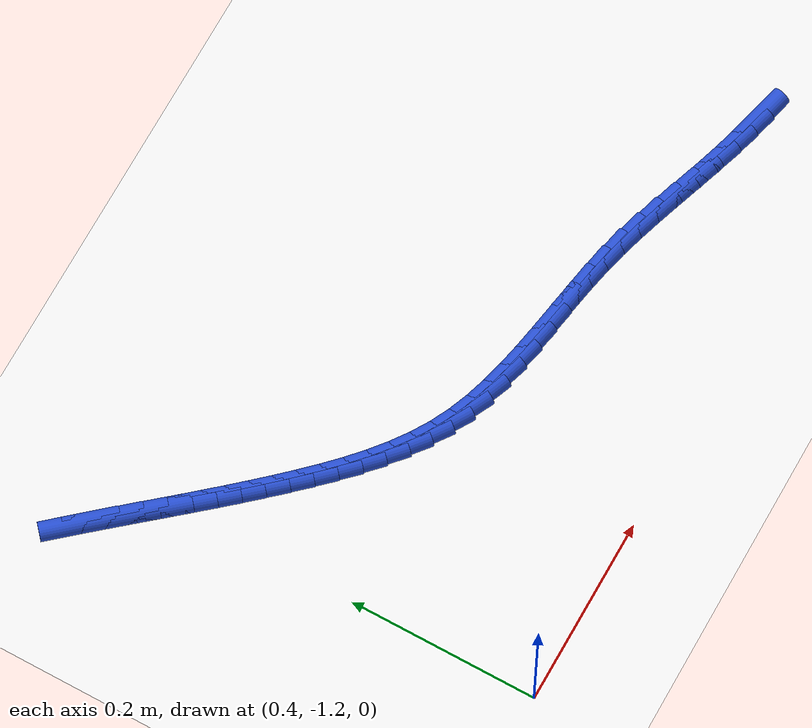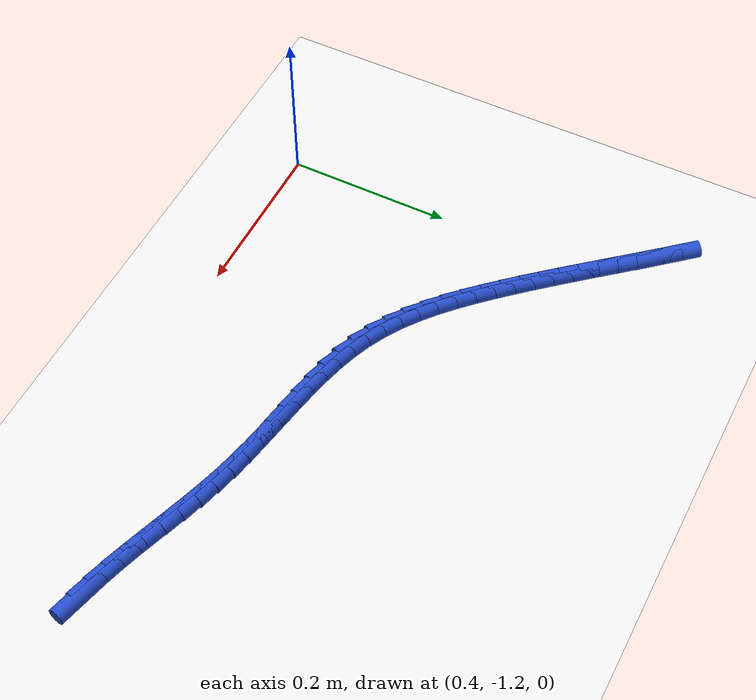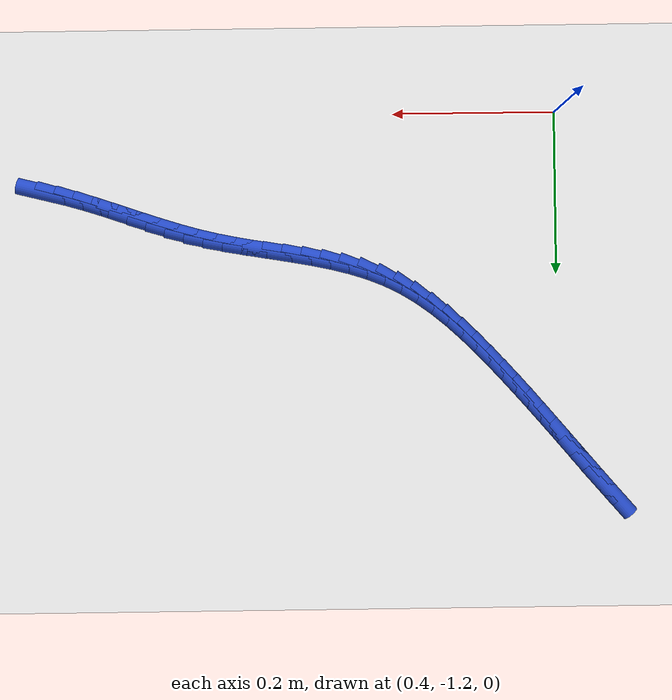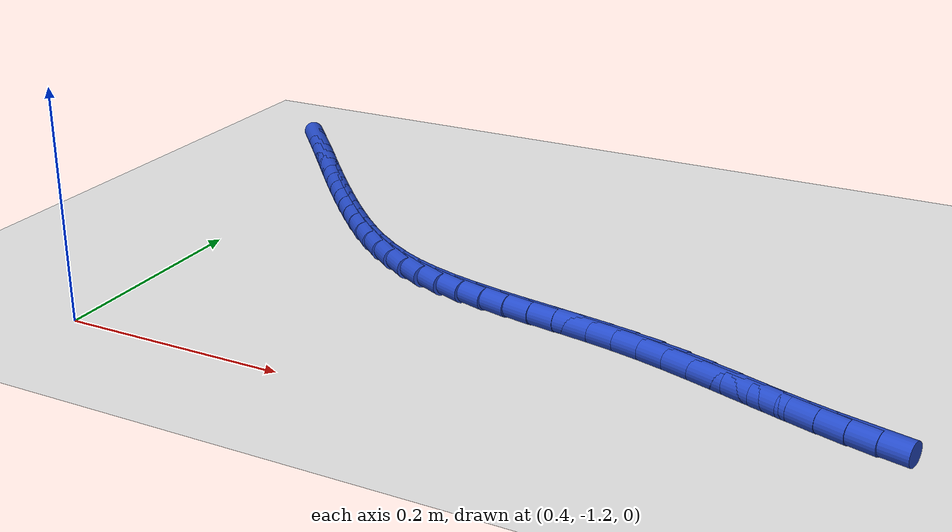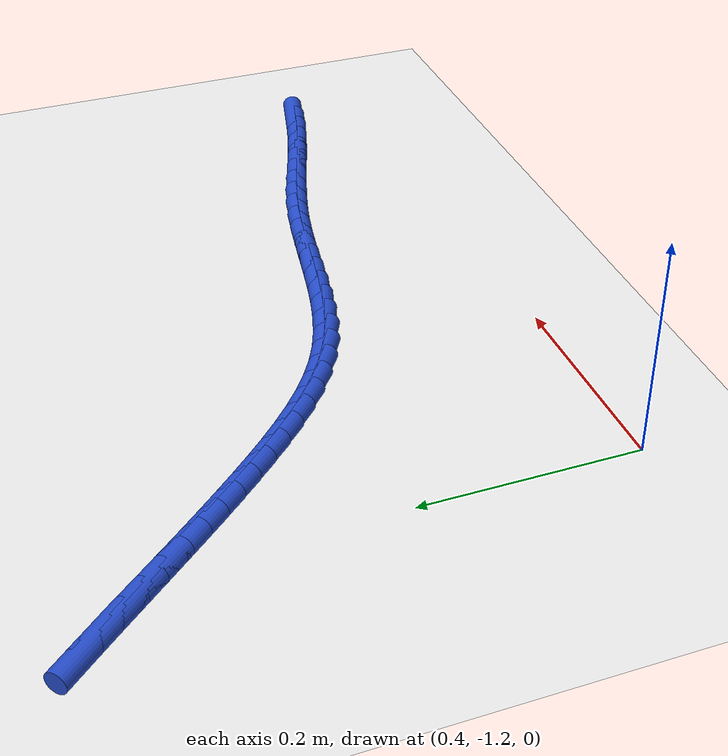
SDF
<sdf version="1.6">
 <world name="default">
  <model name="ground_plane">
   <static>1</static>
   <link name="link">
    <collision name="collision">
     <geometry><plane><normal>0 0 1</normal><size>100 100</size></plane></geometry>
     <surface><friction><ode><mu>100</mu><mu2>50</mu2></ode></friction></surface>
    </collision>
    <visual name="visual">
     <cast_shadows>0</cast_shadows>
     <geometry><plane><normal>0 0 1</normal><size>100 100</size></plane></geometry>
     <material>
      <script><uri>file://media/materials/scripts/gazebo.material</uri><name>Gazebo/WhiteGlow</name></script>
     </material>
    </visual>
   </link>
  </model>
  <model name="line">
   <link name="link_211">
    <pose>1.0250111713233083 -1.1071562907150534 0.01 0 1.57 -0.24549502835957362</pose>
    <collision name="collision">
     <geometry><cylinder><radius>0.01</radius><length>0.08</length></cylinder></geometry>
    </collision>
    <visual name="visual">
     <material>
      <script><name>Gazebo/Blue</name><uri>file://media/materials/scripts/gazebo.material</uri></script>
     </material>
     <geometry><cylinder><radius>0.01</radius><length>0.08</length></cylinder></geometry>
    </visual>
   </link>
   <link name="link_212">
    <pose>1.00213819233182 -1.1014254953590767 0.01 0 1.57 -0.28274204694649874</pose>
    <collision name="collision">
     <geometry><cylinder><radius>0.01</radius><length>0.08</length></cylinder></geometry>
    </collision>
    <visual name="visual">
     <material>
      <script><name>Gazebo/Blue</name><uri>file://media/materials/scripts/gazebo.material</uri></script>
     </material>
     <geometry><cylinder><radius>0.01</radius><length>0.08</length></cylinder></geometry>
    </visual>
   </link>
   <link name="link_213">
    <pose>0.9794144742052056 -1.0948236767925552 0.01 0 1.57 -0.3089628004888178</pose>
    <collision name="collision">
     <geometry><cylinder><radius>0.01</radius><length>0.08</length></cylinder></geometry>
    </collision>
    <visual name="visual">
     <material>
      <script><name>Gazebo/Blue</name><uri>file://media/materials/scripts/gazebo.material</uri></script>
     </material>
     <geometry><cylinder><radius>0.01</radius><length>0.08</length></cylinder></geometry>
    </visual>
   </link>
   <link name="link_214">
    <pose>0.9567772433146647 -1.0875982290418886 0.01 0 1.57 -0.3242893316621575</pose>
    <collision name="collision">
     <geometry><cylinder><radius>0.01</radius><length>0.08</length></cylinder></geometry>
    </collision>
    <visual name="visual">
     <material>
      <script><name>Gazebo/Blue</name><uri>file://media/materials/scripts/gazebo.material</uri></script>
     </material>
     <geometry><cylinder><radius>0.01</radius><length>0.08</length></cylinder></geometry>
    </visual>
   </link>
   <link name="link_215">
    <pose>0.9341637260313983 -1.079996546133479 0.01 0 1.57 -0.32887168166729097</pose>
    <collision name="collision">
     <geometry><cylinder><radius>0.01</radius><length>0.08</length></cylinder></geometry>
    </collision>
    <visual name="visual">
     <material>
      <script><name>Gazebo/Blue</name><uri>file://media/materials/scripts/gazebo.material</uri></script>
     </material>
     <geometry><cylinder><radius>0.01</radius><length>0.08</length></cylinder></geometry>
    </visual>
   </link>
   <link name="link_216">
    <pose>0.9115111487266075 -1.0722660220937275 0.01 0 1.57 -0.32282471885759634</pose>
    <collision name="collision">
     <geometry><cylinder><radius>0.01</radius><length>0.08</length></cylinder></geometry>
    </collision>
    <visual name="visual">
     <material>
      <script><name>Gazebo/Blue</name><uri>file://media/materials/scripts/gazebo.material</uri></script>
     </material>
     <geometry><cylinder><radius>0.01</radius><length>0.08</length></cylinder></geometry>
    </visual>
   </link>
   <link name="link_217">
    <pose>0.888756737771492 -1.064654050949035 0.01 0 1.57 -0.30621367674528444</pose>
    <collision name="collision">
     <geometry><cylinder><radius>0.01</radius><length>0.08</length></cylinder></geometry>
    </collision>
    <visual name="visual">
     <material>
      <script><name>Gazebo/Blue</name><uri>file://media/materials/scripts/gazebo.material</uri></script>
     </material>
     <geometry><cylinder><radius>0.01</radius><length>0.08</length></cylinder></geometry>
    </visual>
   </link>
   <link name="link_218">
    <pose>0.8658377195372542 -1.0574080267258033 0.01 0 1.57 -0.27907542768240584</pose>
    <collision name="collision">
     <geometry><cylinder><radius>0.01</radius><length>0.08</length></cylinder></geometry>
    </collision>
    <visual name="visual">
     <material>
      <script><name>Gazebo/Blue</name><uri>file://media/materials/scripts/gazebo.material</uri></script>
     </material>
     <geometry><cylinder><radius>0.01</radius><length>0.08</length></cylinder></geometry>
    </visual>
   </link>
   <link name="link_219">
    <pose>0.8426913203950942 -1.0507753434504334 0.01 0 1.57 -0.2417358039602598</pose>
    <collision name="collision">
     <geometry><cylinder><radius>0.01</radius><length>0.08</length></cylinder></geometry>
    </collision>
    <visual name="visual">
     <material>
      <script><name>Gazebo/Blue</name><uri>file://media/materials/scripts/gazebo.material</uri></script>
     </material>
     <geometry><cylinder><radius>0.01</radius><length>0.08</length></cylinder></geometry>
    </visual>
   </link>
   <link name="link_220">
    <pose>0.8192567846364852 -1.0449973889658595 0.01 0 1.57 -0.20421948968677262</pose>
    <collision name="collision">
     <geometry><cylinder><radius>0.01</radius><length>0.08</length></cylinder></geometry>
    </collision>
    <visual name="visual">
     <material>
      <script><name>Gazebo/Blue</name><uri>file://media/materials/scripts/gazebo.material</uri></script>
     </material>
     <geometry><cylinder><radius>0.01</radius><length>0.08</length></cylinder></geometry>
    </visual>
   </link>
   <link name="link_221">
    <pose>0.7955499600167769 -1.0400875468353032 0.01 0 1.57 -0.17913710382717865</pose>
    <collision name="collision">
     <geometry><cylinder><radius>0.01</radius><length>0.08</length></cylinder></geometry>
    </collision>
    <visual name="visual">
     <material>
      <script><name>Gazebo/Blue</name><uri>file://media/materials/scripts/gazebo.material</uri></script>
     </material>
     <geometry><cylinder><radius>0.01</radius><length>0.08</length></cylinder></geometry>
    </visual>
   </link>
   <link name="link_222">
    <pose>0.7716851515277043 -1.0357661502802902 0.01 0 1.57 -0.16711098824988527</pose>
    <collision name="collision">
     <geometry><cylinder><radius>0.01</radius><length>0.08</length></cylinder></geometry>
    </collision>
    <visual name="visual">
     <material>
      <script><name>Gazebo/Blue</name><uri>file://media/materials/scripts/gazebo.material</uri></script>
     </material>
     <geometry><cylinder><radius>0.01</radius><length>0.08</length></cylinder></geometry>
    </visual>
   </link>
   <link name="link_223">
    <pose>0.7477831393233085 -1.0317342597030346 0.01 0 1.57 -0.16807145746441962</pose>
    <collision name="collision">
     <geometry><cylinder><radius>0.01</radius><length>0.08</length></cylinder></geometry>
    </collision>
    <visual name="visual">
     <material>
      <script><name>Gazebo/Blue</name><uri>file://media/materials/scripts/gazebo.material</uri></script>
     </material>
     <geometry><cylinder><radius>0.01</radius><length>0.08</length></cylinder></geometry>
    </visual>
   </link>
   <link name="link_224">
    <pose>0.723964703557631 -1.0276929355057505 0.01 0 1.57 -0.18215747557077966</pose>
    <collision name="collision">
     <geometry><cylinder><radius>0.01</radius><length>0.08</length></cylinder></geometry>
    </collision>
    <visual name="visual">
     <material>
      <script><name>Gazebo/Blue</name><uri>file://media/materials/scripts/gazebo.material</uri></script>
     </material>
     <geometry><cylinder><radius>0.01</radius><length>0.08</length></cylinder></geometry>
    </visual>
   </link>
   <link name="link_225">
    <pose>0.7003506243847133 -1.023343238090652 0.01 0 1.57 -0.20971855631451347</pose>
    <collision name="collision">
     <geometry><cylinder><radius>0.01</radius><length>0.08</length></cylinder></geometry>
    </collision>
    <visual name="visual">
     <material>
      <script><name>Gazebo/Blue</name><uri>file://media/materials/scripts/gazebo.material</uri></script>
     </material>
     <geometry><cylinder><radius>0.01</radius><length>0.08</length></cylinder></geometry>
    </visual>
   </link>
   <link name="link_226">
    <pose>0.6770616819585961 -1.0183862278599536 0.01 0 1.57 -0.2512522761222574</pose>
    <collision name="collision">
     <geometry><cylinder><radius>0.01</radius><length>0.08</length></cylinder></geometry>
    </collision>
    <visual name="visual">
     <material>
      <script><name>Gazebo/Blue</name><uri>file://media/materials/scripts/gazebo.material</uri></script>
     </material>
     <geometry><cylinder><radius>0.01</radius><length>0.08</length></cylinder></geometry>
    </visual>
   </link>
   <link name="link_227">
    <pose>0.6542186564333223 -1.012522965215869 0.01 0 1.57 -0.3072589896936092</pose>
    <collision name="collision">
     <geometry><cylinder><radius>0.01</radius><length>0.08</length></cylinder></geometry>
    </collision>
    <visual name="visual">
     <material>
      <script><name>Gazebo/Blue</name><uri>file://media/materials/scripts/gazebo.material</uri></script>
     </material>
     <geometry><cylinder><radius>0.01</radius><length>0.08</length></cylinder></geometry>
    </visual>
   </link>
   <link name="link_228">
    <pose>0.631942327962933 -1.0054545105606127 0.01 0 1.57 -0.3779900130966197</pose>
    <collision name="collision">
     <geometry><cylinder><radius>0.01</radius><length>0.08</length></cylinder></geometry>
    </collision>
    <visual name="visual">
     <material>
      <script><name>Gazebo/Blue</name><uri>file://media/materials/scripts/gazebo.material</uri></script>
     </material>
     <geometry><cylinder><radius>0.01</radius><length>0.08</length></cylinder></geometry>
    </visual>
   </link>
   <link name="link_229">
    <pose>0.6103534767014694 -0.9968819242963991 0.01 0 1.57 -0.46278529686004416</pose>
    <collision name="collision">
     <geometry><cylinder><radius>0.01</radius><length>0.08</length></cylinder></geometry>
    </collision>
    <visual name="visual">
     <material>
      <script><name>Gazebo/Blue</name><uri>file://media/materials/scripts/gazebo.material</uri></script>
     </material>
     <geometry><cylinder><radius>0.01</radius><length>0.08</length></cylinder></geometry>
    </visual>
   </link>
   <link name="link_230">
    <pose>0.5895706221263027 -0.9865128889947 0.01 0 1.57 -0.549689638123729</pose>
    <collision name="collision">
     <geometry><cylinder><radius>0.01</radius><length>0.08</length></cylinder></geometry>
    </collision>
    <visual name="visual">
     <material>
      <script><name>Gazebo/Blue</name><uri>file://media/materials/scripts/gazebo.material</uri></script>
     </material>
     <geometry><cylinder><radius>0.01</radius><length>0.08</length></cylinder></geometry>
    </visual>
   </link>
   <link name="link_231">
    <pose>0.5696301176253076 -0.9742957752294015 0.01 0 1.57 -0.6245201485744484</pose>
    <collision name="collision">
     <geometry><cylinder><radius>0.01</radius><length>0.08</length></cylinder></geometry>
    </collision>
    <visual name="visual">
     <material>
      <script><name>Gazebo/Blue</name><uri>file://media/materials/scripts/gazebo.material</uri></script>
     </material>
     <geometry><cylinder><radius>0.01</radius><length>0.08</length></cylinder></geometry>
    </visual>
   </link>
   <link name="link_232">
    <pose>0.5504647747196977 -0.9604822573485562 0.01 0 1.57 -0.6867668228505287</pose>
    <collision name="collision">
     <geometry><cylinder><radius>0.01</radius><length>0.08</length></cylinder></geometry>
    </collision>
    <visual name="visual">
     <material>
      <script><name>Gazebo/Blue</name><uri>file://media/materials/scripts/gazebo.material</uri></script>
     </material>
     <geometry><cylinder><radius>0.01</radius><length>0.08</length></cylinder></geometry>
    </visual>
   </link>
   <link name="link_233">
    <pose>0.5320007973137159 -0.945343365302257 0.01 0 1.57 -0.7371491588852679</pose>
    <collision name="collision">
     <geometry><cylinder><radius>0.01</radius><length>0.08</length></cylinder></geometry>
    </collision>
    <visual name="visual">
     <material>
      <script><name>Gazebo/Blue</name><uri>file://media/materials/scripts/gazebo.material</uri></script>
     </material>
     <geometry><cylinder><radius>0.01</radius><length>0.08</length></cylinder></geometry>
    </visual>
   </link>
   <link name="link_234">
    <pose>0.5141643893116036 -0.9291501290405964 0.01 0 1.57 -0.7764640331398848</pose>
    <collision name="collision">
     <geometry><cylinder><radius>0.01</radius><length>0.08</length></cylinder></geometry>
    </collision>
    <visual name="visual">
     <material>
      <script><name>Gazebo/Blue</name><uri>file://media/materials/scripts/gazebo.material</uri></script>
     </material>
     <geometry><cylinder><radius>0.01</radius><length>0.08</length></cylinder></geometry>
    </visual>
   </link>
   <link name="link_235">
    <pose>0.4968817546176049 -0.9121735785136679 0.01 0 1.57 -0.8054056274332427</pose>
    <collision name="collision">
     <geometry><cylinder><radius>0.01</radius><length>0.08</length></cylinder></geometry>
    </collision>
    <visual name="visual">
     <material>
      <script><name>Gazebo/Blue</name><uri>file://media/materials/scripts/gazebo.material</uri></script>
     </material>
     <geometry><cylinder><radius>0.01</radius><length>0.08</length></cylinder></geometry>
    </visual>
   </link>
   <link name="link_236">
    <pose>0.48007909713596203 -0.8946847436715643 0.01 0 1.57 -0.8246516450360071</pose>
    <collision name="collision">
     <geometry><cylinder><radius>0.01</radius><length>0.08</length></cylinder></geometry>
    </collision>
    <visual name="visual">
     <material>
      <script><name>Gazebo/Blue</name><uri>file://media/materials/scripts/gazebo.material</uri></script>
     </material>
     <geometry><cylinder><radius>0.01</radius><length>0.08</length></cylinder></geometry>
    </visual>
   </link>
   <link name="link_237">
    <pose>0.46368295664219533 -0.8769480833291667 0.01 0 1.57 -0.8381223658125817</pose>
    <collision name="collision">
     <geometry><cylinder><radius>0.01</radius><length>0.08</length></cylinder></geometry>
    </collision>
    <visual name="visual">
     <material>
      <script><name>Gazebo/Blue</name><uri>file://media/materials/scripts/gazebo.material</uri></script>
     </material>
     <geometry><cylinder><radius>0.01</radius><length>0.08</length></cylinder></geometry>
    </visual>
   </link>
   <link name="link_238">
    <pose>0.44762630121121044 -0.8591022901903397 0.01 0 1.57 -0.8491224649055338</pose>
    <collision name="collision">
     <geometry><cylinder><radius>0.01</radius><length>0.08</length></cylinder></geometry>
    </collision>
    <visual name="visual">
     <material>
      <script><name>Gazebo/Blue</name><uri>file://media/materials/scripts/gazebo.material</uri></script>
     </material>
     <geometry><cylinder><radius>0.01</radius><length>0.08</length></cylinder></geometry>
    </visual>
   </link>
   <link name="link_239">
    <pose>0.4318478799956201 -0.8411729533809673 0.01 0 1.57 -0.8576982777054301</pose>
    <collision name="collision">
     <geometry><cylinder><radius>0.01</radius><length>0.08</length></cylinder></geometry>
    </collision>
    <visual name="visual">
     <material>
      <script><name>Gazebo/Blue</name><uri>file://media/materials/scripts/gazebo.material</uri></script>
     </material>
     <geometry><cylinder><radius>0.01</radius><length>0.08</length></cylinder></geometry>
    </visual>
   </link>
   <link name="link_240">
    <pose>0.41628664811784033 -0.8231816323420122 0.01 0 1.57 -0.8637930058473177</pose>
    <collision name="collision">
     <geometry><cylinder><radius>0.01</radius><length>0.08</length></cylinder></geometry>
    </collision>
    <visual name="visual">
     <material>
      <script><name>Gazebo/Blue</name><uri>file://media/materials/scripts/gazebo.material</uri></script>
     </material>
     <geometry><cylinder><radius>0.01</radius><length>0.08</length></cylinder></geometry>
    </visual>
   </link>
   <link name="link_241">
    <pose>0.400881560700287 -0.805149886514437 0.01 0 1.57 -0.8673656009626121</pose>
    <collision name="collision">
     <geometry><cylinder><radius>0.01</radius><length>0.08</length></cylinder></geometry>
    </collision>
    <visual name="visual">
     <material>
      <script><name>Gazebo/Blue</name><uri>file://media/materials/scripts/gazebo.material</uri></script>
     </material>
     <geometry><cylinder><radius>0.01</radius><length>0.08</length></cylinder></geometry>
    </visual>
   </link>
   <link name="link_242">
    <pose>0.3855715728653762 -0.7870992753392039 0.01 0 1.57 -0.8683902792652969</pose>
    <collision name="collision">
     <geometry><cylinder><radius>0.01</radius><length>0.08</length></cylinder></geometry>
    </collision>
    <visual name="visual">
     <material>
      <script><name>Gazebo/Blue</name><uri>file://media/materials/scripts/gazebo.material</uri></script>
     </material>
     <geometry><cylinder><radius>0.01</radius><length>0.08</length></cylinder></geometry>
    </visual>
   </link>
   <link name="link_243">
    <pose>0.370295639735523 -0.769051358257275 0.01 0 1.57 -0.8668562449956874</pose>
    <collision name="collision">
     <geometry><cylinder><radius>0.01</radius><length>0.08</length></cylinder></geometry>
    </collision>
    <visual name="visual">
     <material>
      <script><name>Gazebo/Blue</name><uri>file://media/materials/scripts/gazebo.material</uri></script>
     </material>
     <geometry><cylinder><radius>0.01</radius><length>0.08</length></cylinder></geometry>
    </visual>
   </link>
   <link name="link_244">
    <pose>0.3549927164331443 -0.7510276947096136 0.01 0 1.57 -0.8627676738562322</pose>
    <collision name="collision">
     <geometry><cylinder><radius>0.01</radius><length>0.08</length></cylinder></geometry>
    </collision>
    <visual name="visual">
     <material>
      <script><name>Gazebo/Blue</name><uri>file://media/materials/scripts/gazebo.material</uri></script>
     </material>
     <geometry><cylinder><radius>0.01</radius><length>0.08</length></cylinder></geometry>
    </visual>
   </link>
   <link name="link_245">
    <pose>0.33960175808065596 -0.7330498441371823 0.01 0 1.57 -0.8561439738687859</pose>
    <collision name="collision">
     <geometry><cylinder><radius>0.01</radius><length>0.08</length></cylinder></geometry>
    </collision>
    <visual name="visual">
     <material>
      <script><name>Gazebo/Blue</name><uri>file://media/materials/scripts/gazebo.material</uri></script>
     </material>
     <geometry><cylinder><radius>0.01</radius><length>0.08</length></cylinder></geometry>
    </visual>
   </link>
  </model>
 </world>
</sdf>
